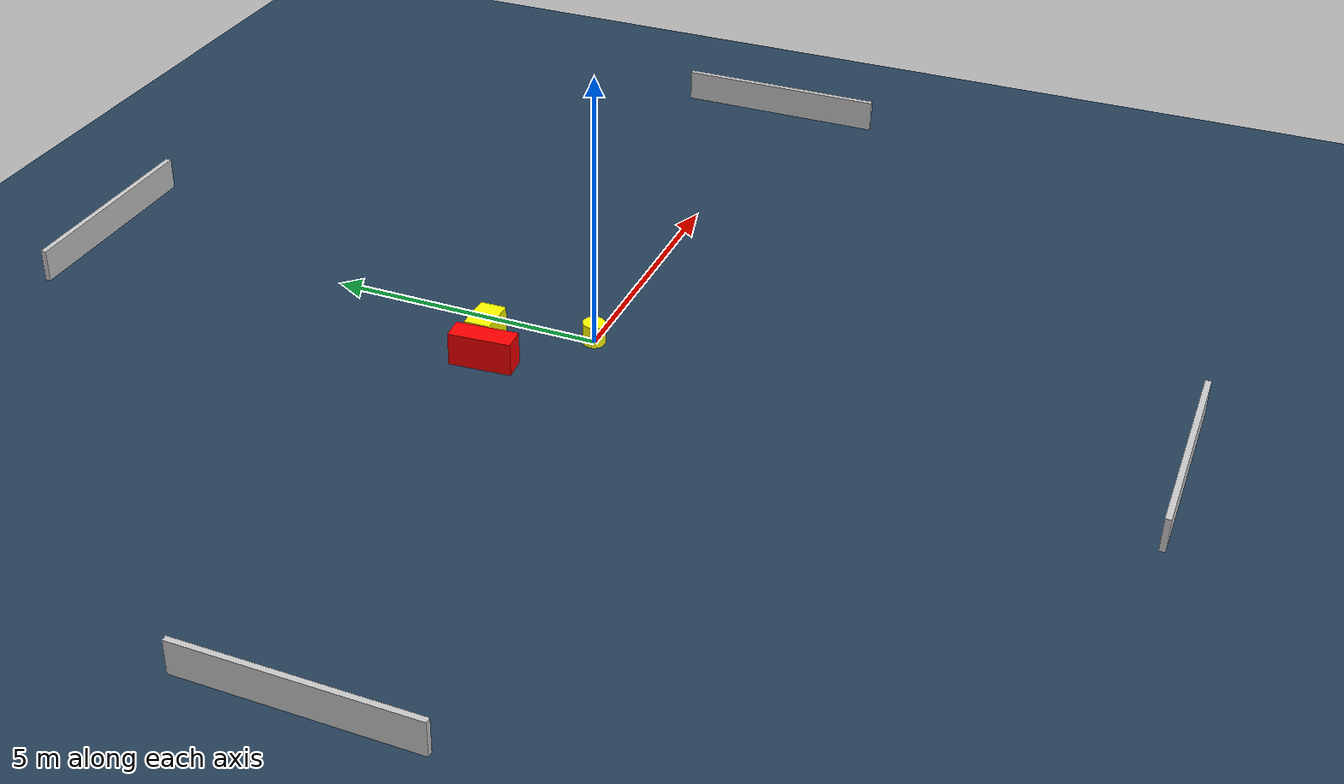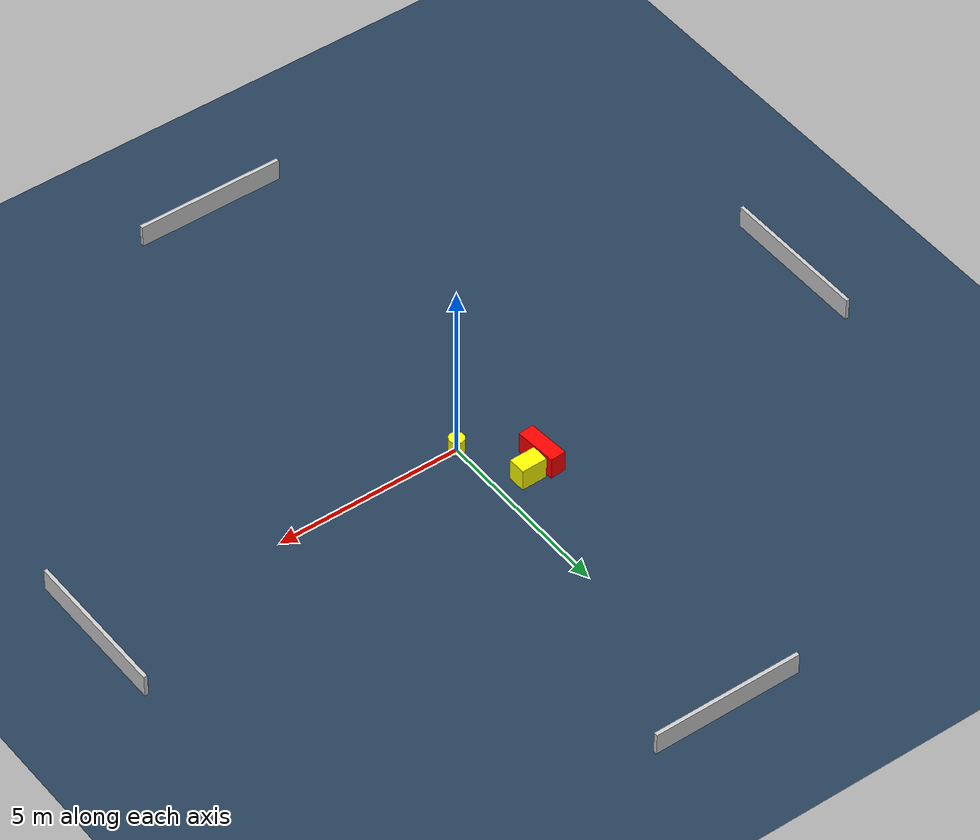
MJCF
<?xml version="1.0" ?>
<mujoco model="generated_environment">
  <option timestep="0.01" integrator="RK4" cone="elliptic"/>
  <default>
    <geom density="1"/>
  </default>
  <asset>
    <texture builtin="gradient" height="3072" name="skybox" rgb1="0.3 0.5 0.7" rgb2="0 0 0" type="skybox" width="512"/>
    <texture builtin="checker" height="300" name="groundplane" rgb1="0.2 0.3 0.4" rgb2="0.1 0.2 0.3" type="2d" width="300"/>
    <material name="groundplane" reflectance="0.2" texrepeat="5 5" texture="groundplane"/>
  </asset>
  <worldbody>
    <light dir="0 0 -1" directional="true" pos="0 0 1.5"/>
    <geom condim="3" friction="0.5 0.005 0.001" material="groundplane" name="floor" pos="0 0 0" size="0 0 0.05" type="plane"/>
    <body name="walls">
      <geom name="wall_1" condim="4" pos="-10.0 0.0 0.3" rgba="0.800000011920929 0.800000011920929 0.800000011920929 1.0" size="0.05 2.0 0.3" type="box"/>
      <geom name="wall_2" condim="4" pos="10.0 0.0 0.3" rgba="0.800000011920929 0.800000011920929 0.800000011920929 1.0" size="0.05 2.0 0.3" type="box"/>
      <geom name="wall_3" condim="4" pos="0.0 -10.0 0.3" rgba="0.800000011920929 0.800000011920929 0.800000011920929 1.0" size="2.0 0.05 0.3" type="box"/>
      <geom name="wall_4" condim="4" pos="0.0 10.0 0.3" rgba="0.800000011920929 0.800000011920929 0.800000011920929 1.0" size="2.0 0.05 0.3" type="box"/>
    </body>
    <body name="robot">
      <joint name="joint_x" type="slide" pos="0 0 0" axis="1 0 0"/>
      <joint name="joint_y" type="slide" pos="0 0 0" axis="0 1 0"/>
      <geom name="robot" type="cylinder" pos="0.0 0.0 0.2" size="0.2 0.2 0.0" mass="5.0" friction="1.0 0.005 0.0001" condim="4" rgba="1.0 1.0 0.0 1.0"/>
    </body>
    <body name="obstacle_1_movable">
      <geom name="obstacle_1_movable" condim="4" pos="-0.78935001142049 1.6936637574849678 0.3" euler="0 0 180.93536736381031" friction="0.0 0.005 0.001" rgba="1.0 1.0 0.0 1.0" size="0.34793616910461267 0.23485897962771318 0.3" type="box" mass="0.1"/>
      <joint type="free"/>
    </body>
    <body name="obstacle_2_static">
      <geom name="obstacle_2_static" condim="4" pos="-1.3642371316787205 1.451994597608911 0.3" euler="0 0 94.52096836278255" friction="0.0 0.005 0.001" rgba="1.0 0.0 0.0 1.0" size="0.5642537888316523 0.2096421794711826 0.3" type="box"/>
    </body>
  </worldbody>
  <actuator>
    <motor name="actuator_x" joint="joint_x" gear="1" ctrlrange="-1 1"/>
    <motor name="actuator_y" joint="joint_y" gear="1" ctrlrange="-1 1"/>
  </actuator>
</mujoco>
